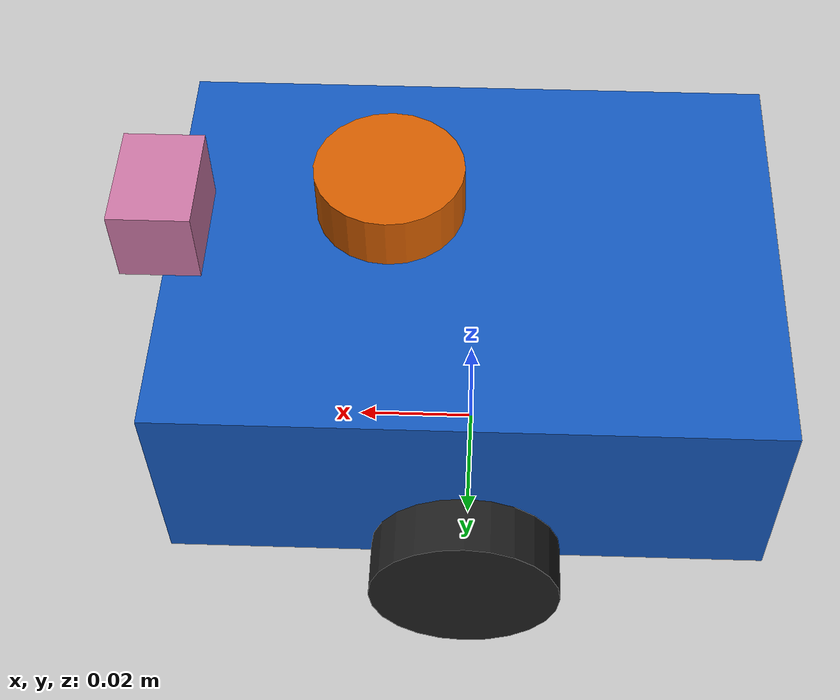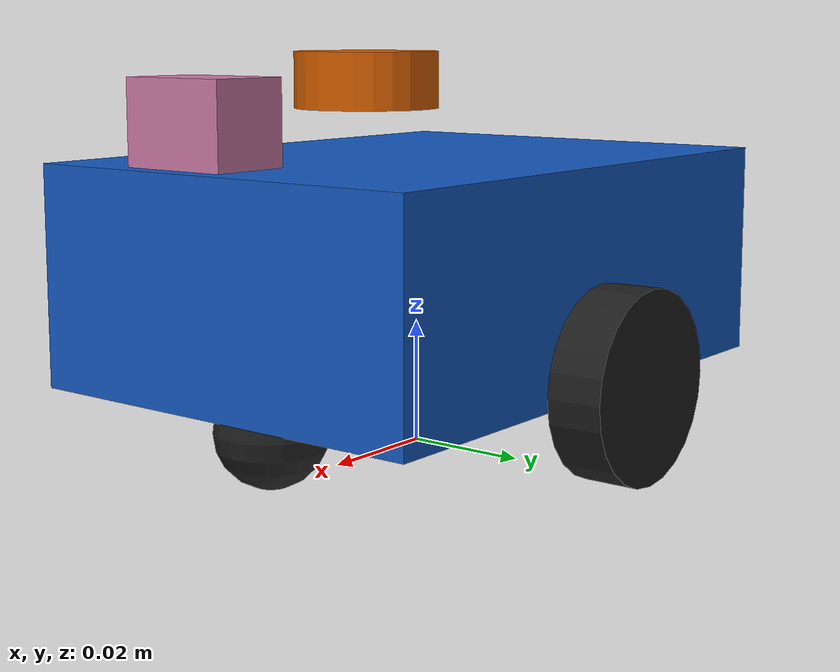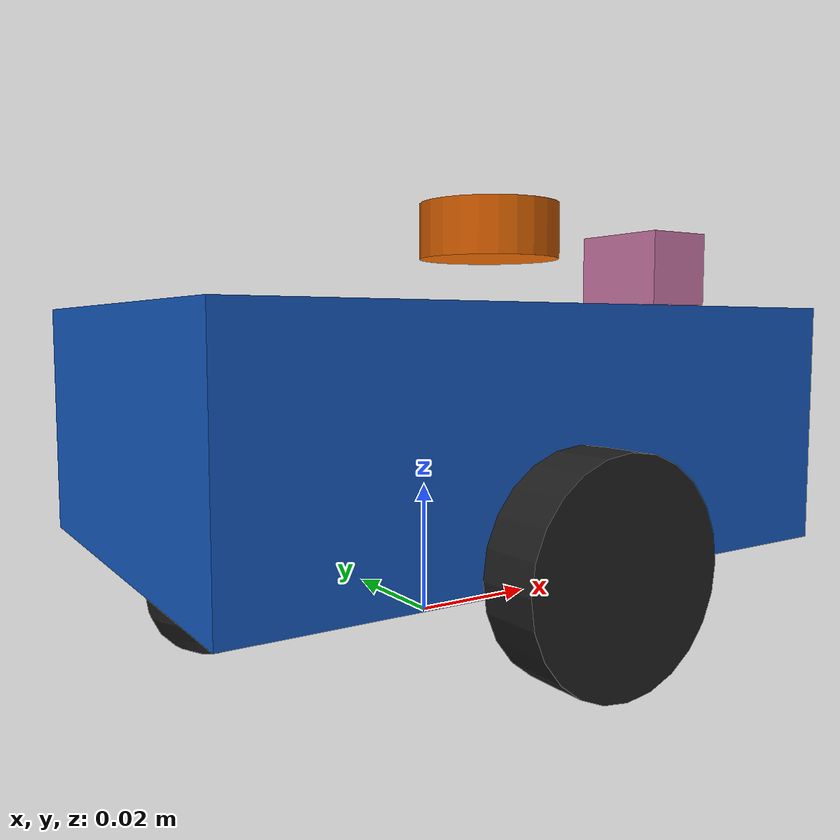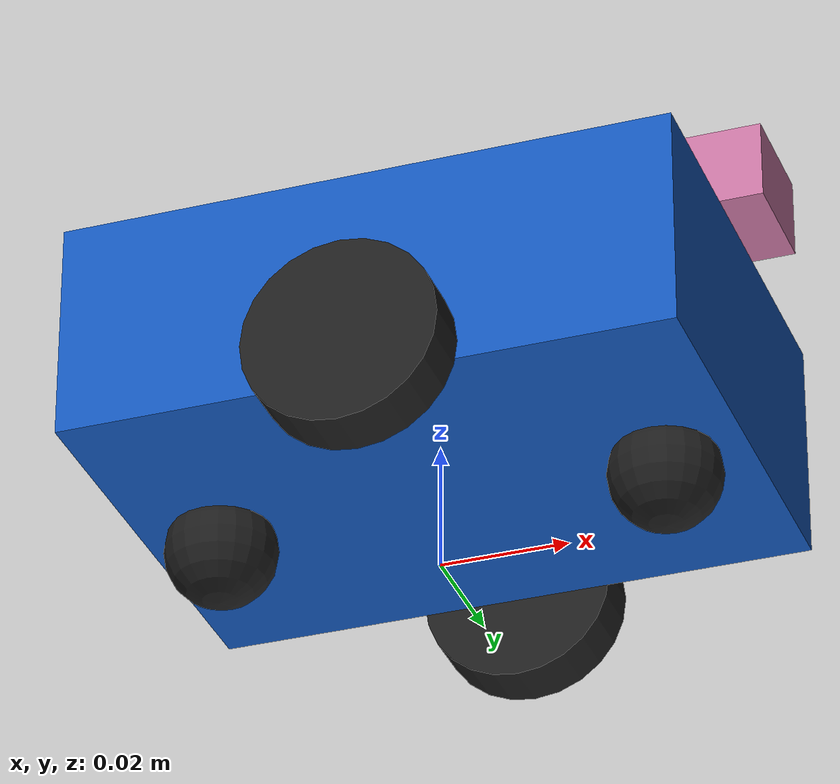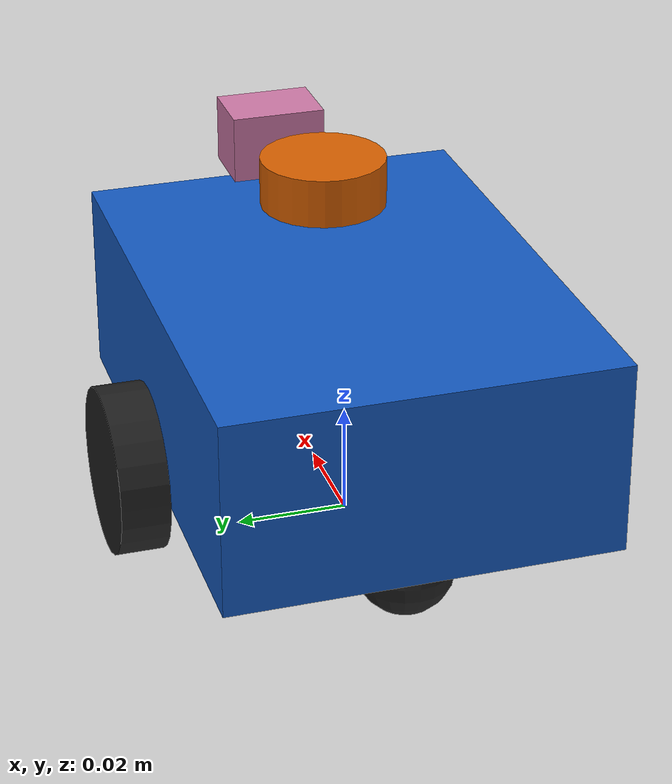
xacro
<?xml version="1.0"?>
<robot xmlns:xacro="http://www.ros.org/wiki/xacro" name="smart_community_robot">
  <xacro:property name="wheel_radius" value="0.015"/>
  <xacro:property name="wheel_width" value="0.00875"/>
  <xacro:property name="wheel_separation" value="0.08"/>

  <link name="base_link">
    <inertial><origin xyz="0 0 0.02"/><mass value="0.25"/>
      <inertia ixx="0.000125" ixy="0" ixz="0" iyy="0.000219" iyz="0" izz="0.000281"/></inertial>
    <visual><origin xyz="0 0 0.03"/><geometry><box size="0.095 0.07 0.035"/></geometry>
      <material name="body_blue"><color rgba="0.08 0.35 0.75 1"/></material></visual>
    <collision><origin xyz="0 0 0.03"/><geometry><box size="0.095 0.07 0.035"/></geometry></collision>
  </link>

  <link name="left_wheel_link">
    <inertial><mass value="0.019"/><inertia ixx="0.00000125" ixy="0" ixz="0" iyy="0.00000125" iyz="0" izz="0.00000125"/></inertial>
    <visual><origin rpy="${pi/2} 0 0"/><geometry><cylinder radius="${wheel_radius}" length="${wheel_width}"/></geometry></visual>
    <collision><origin rpy="${pi/2} 0 0"/><geometry><cylinder radius="${wheel_radius}" length="${wheel_width}"/></geometry></collision>
  </link>
  <joint name="left_wheel_joint" type="continuous">
    <parent link="base_link"/><child link="left_wheel_link"/>
    <origin xyz="0 ${wheel_separation/2} ${wheel_radius}"/><axis xyz="0 1 0"/>
  </joint>

  <link name="right_wheel_link">
    <inertial><mass value="0.019"/><inertia ixx="0.00000125" ixy="0" ixz="0" iyy="0.00000125" iyz="0" izz="0.00000125"/></inertial>
    <visual><origin rpy="${pi/2} 0 0"/><geometry><cylinder radius="${wheel_radius}" length="${wheel_width}"/></geometry></visual>
    <collision><origin rpy="${pi/2} 0 0"/><geometry><cylinder radius="${wheel_radius}" length="${wheel_width}"/></geometry></collision>
  </link>
  <joint name="right_wheel_joint" type="continuous">
    <parent link="base_link"/><child link="right_wheel_link"/>
    <origin xyz="0 ${-wheel_separation/2} ${wheel_radius}"/><axis xyz="0 1 0"/>
  </joint>

  <link name="caster_front_link">
    <inertial><mass value="0.004"/><inertia ixx="0.0000003" ixy="0" ixz="0" iyy="0.0000003" iyz="0" izz="0.0000003"/></inertial>
    <visual><geometry><sphere radius="0.00875"/></geometry></visual>
    <collision><geometry><sphere radius="0.00875"/></geometry></collision>
  </link>
  <joint name="caster_front_joint" type="fixed"><parent link="base_link"/><child link="caster_front_link"/><origin xyz="0.035 0 0.00875"/></joint>

  <link name="caster_rear_link">
    <inertial><mass value="0.004"/><inertia ixx="0.0000003" ixy="0" ixz="0" iyy="0.0000003" iyz="0" izz="0.0000003"/></inertial>
    <visual><geometry><sphere radius="0.00875"/></geometry></visual>
    <collision><geometry><sphere radius="0.00875"/></geometry></collision>
  </link>
  <joint name="caster_rear_joint" type="fixed"><parent link="base_link"/><child link="caster_rear_link"/><origin xyz="-0.035 0 0.00875"/></joint>

  <link name="laser_link">
    <visual><geometry><cylinder radius="0.01125" length="0.00875"/></geometry></visual>
  </link>
  <joint name="laser_joint" type="fixed"><parent link="base_link"/><child link="laser_link"/><origin xyz="0.0125 0 0.06"/></joint>

  <link name="camera_link">
    <visual><geometry><box size="0.0125 0.0175 0.0125"/></geometry></visual>
  </link>
  <joint name="camera_joint" type="fixed"><parent link="base_link"/><child link="camera_link"/><origin xyz="0.0475 0 0.055" rpy="0 0 0"/></joint>

  <gazebo reference="base_link"><material>Gazebo/Blue</material></gazebo>
  <gazebo reference="left_wheel_link"><material>Gazebo/Black</material><mu1>1.0</mu1><mu2>1.0</mu2></gazebo>
  <gazebo reference="right_wheel_link"><material>Gazebo/Black</material><mu1>1.0</mu1><mu2>1.0</mu2></gazebo>
  <gazebo reference="caster_front_link"><material>Gazebo/Black</material><mu1>0.1</mu1><mu2>0.1</mu2></gazebo>
  <gazebo reference="caster_rear_link"><material>Gazebo/Black</material><mu1>0.1</mu1><mu2>0.1</mu2></gazebo>

  <gazebo>
    <plugin name="smart_diff_drive" filename="libgazebo_ros_diff_drive.so">
      <ros><namespace>/</namespace></ros>
      <update_rate>50</update_rate>
      <left_joint>left_wheel_joint</left_joint>
      <right_joint>right_wheel_joint</right_joint>
      <wheel_separation>${wheel_separation}</wheel_separation>
      <wheel_diameter>${2*wheel_radius}</wheel_diameter>
      <max_wheel_torque>5.0</max_wheel_torque>
      <max_wheel_acceleration>10.0</max_wheel_acceleration>
      <command_topic>cmd_vel</command_topic>
      <odometry_topic>odom</odometry_topic>
      <odometry_frame>odom</odometry_frame>
      <robot_base_frame>base_link</robot_base_frame>
      <publish_odom>true</publish_odom>
      <publish_odom_tf>true</publish_odom_tf>
      <publish_wheel_tf>true</publish_wheel_tf>
    </plugin>
  </gazebo>

  <gazebo reference="laser_link">
    <sensor name="lidar" type="ray">
      <always_on>true</always_on><visualize>true</visualize><update_rate>10</update_rate>
      <ray>
        <scan><horizontal><samples>360</samples><resolution>1</resolution>
          <min_angle>-${pi}</min_angle><max_angle>${pi}</max_angle></horizontal></scan>
        <range><min>0.10</min><max>1.5</max><resolution>0.01</resolution></range>
      </ray>
      <plugin name="gazebo_ros_laser" filename="libgazebo_ros_ray_sensor.so">
        <ros><namespace>/</namespace><remapping>~/out:=scan</remapping></ros>
        <output_type>sensor_msgs/LaserScan</output_type>
        <frame_name>laser_link</frame_name>
      </plugin>
    </sensor>
  </gazebo>

  <gazebo reference="camera_link">
    <sensor name="front_camera" type="camera">
      <always_on>true</always_on><update_rate>15</update_rate><visualize>true</visualize>
      <camera name="front_camera">
        <horizontal_fov>1.40</horizontal_fov>
        <image><width>640</width><height>480</height><format>R8G8B8</format></image>
        <clip><near>0.05</near><far>20</far></clip>
      </camera>
      <plugin name="gazebo_ros_camera" filename="libgazebo_ros_camera.so">
        <ros><namespace>/</namespace></ros>
        <camera_name>camera</camera_name>
        <frame_name>camera_link</frame_name>
      </plugin>
    </sensor>
  </gazebo>
</robot>
